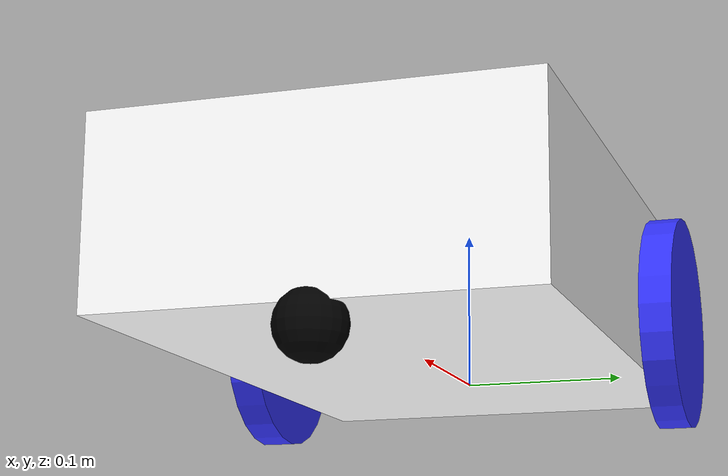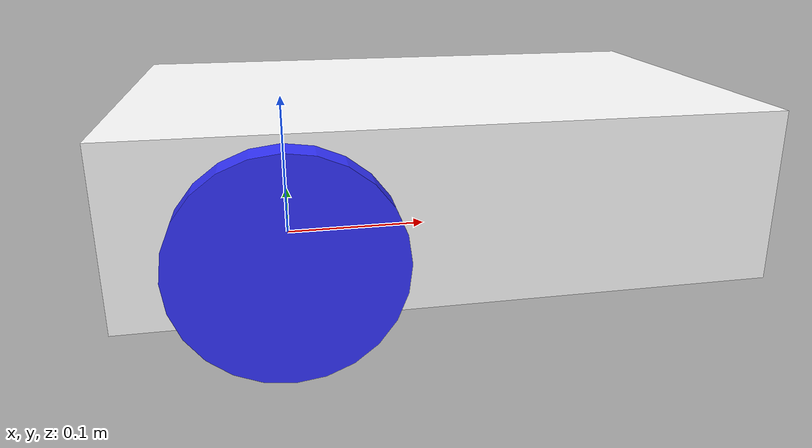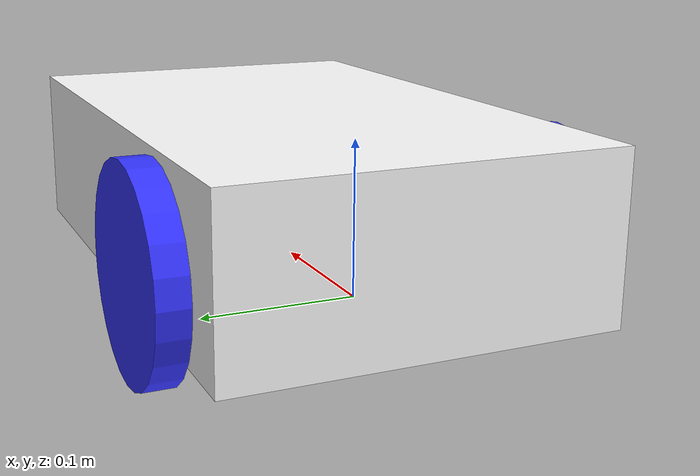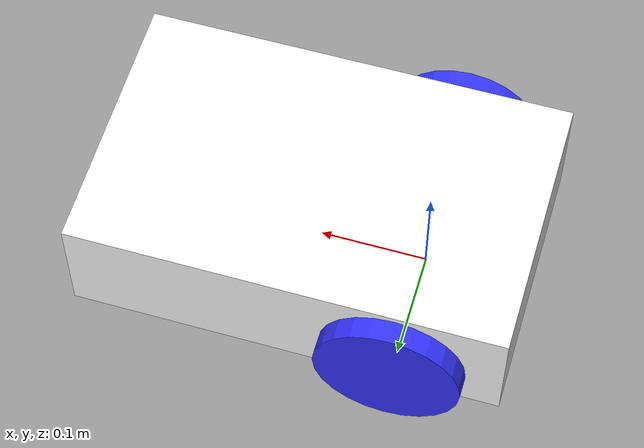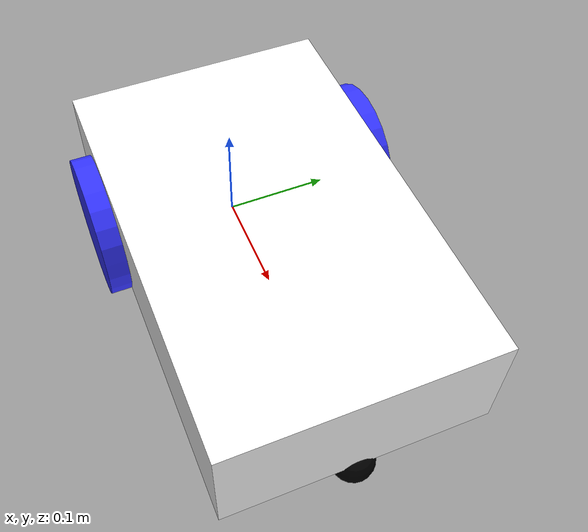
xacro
<?xml version="1.0"?>
<robot xmlns:xacro="http://www.ros.org/wiki/xacro">

    <xacro:include filename="inertial_macros.xacro"/>

    <material name="white">
        <color rgba="1 1 1 1" />
    </material>

    <material name="orange">
        <color rgba="1 0.3 0.1 1" />
    </material>

    <material name="blue">
        <color rgba="0.2 0.2 1 1" />
    </material>

    <material name="black">
        <color rgba="0 0 0 1" />
    </material>

    <material name="red">
        <color rgba="1 0 0 1" />
    </material>

    <!-- BASE LINK -->

    <link name="base_link">

    </link>

    <joint name="chassis_join" type="fixed">
        <parent link="base_link"/>
        <child link="chassis"/>
        <origin xyz= "-0.1 0 0"/>
    </joint>

    <!-- CHASSIS LINK -->

    <link name="chassis">
        <visual>
            <origin xyz="0.2 0 0.05"/>
            <geometry>
                <box size="0.4 0.25 0.11"/>
            </geometry>
            <material name="white"/>
        </visual>
        <collision>
            <origin xyz="0.2 0 0.05"/>
            <geometry>
                <box size="0.4 0.25 0.11"/>
            </geometry>
        </collision>
        <xacro:inertial_box mass="2" x="0.4" y="0.25" z="0.11">
            <origin xyz="0.2 0 0.05" rpy="0 0 0"/>
        </xacro:inertial_box>
    </link>

    <gazebo reference="chassis">
        <material>Gazebo/White</material>
    </gazebo>

    <!-- LEFT WHEEL LINK -->

    <joint name="left_wheel_joint" type="continuous">
        <parent link="base_link"/>
        <child link="left_wheel"/>
        <origin xyz="0 0.135 0.033" rpy="-${pi/2} 0 0"/>
        <axis xyz="0 0 1"/>
    </joint>

    <link name="left_wheel">
        <visual>
            <geometry>
                <cylinder radius="0.067" length="0.02"/>
            </geometry>
            <material name="blue"/>
        </visual>
        <collision>
            <geometry>
                <cylinder radius="0.067" length="0.02"/>
            </geometry>
        </collision>
        <xacro:inertial_cylinder mass="0.1" length="0.02" radius="0.067">
            <origin xyz="0 0 0" rpy="0 0 0"/>
        </xacro:inertial_cylinder>
    </link>

    <gazebo reference="left_wheel">
        <material>Gazebo/Blue</material>
    </gazebo>

    <!-- RIGHT WHEEL LINK -->

    <joint name="right_wheel_joint" type="continuous">
        <parent link="base_link"/>
        <child link="right_wheel"/>
        <origin xyz="0 -0.135 0.033" rpy="${pi/2} 0 0"/>
        <axis xyz="0 0 -1"/>
    </joint>

    <link name="right_wheel">
        <visual>
            <geometry>
                <cylinder radius="0.067" length="0.02"/>
            </geometry>
            <material name="blue"/>
        </visual>
        <collision>
            <geometry>
                <cylinder radius="0.067" length="0.02"/>
            </geometry>
        </collision>
        <xacro:inertial_cylinder mass="0.1" length="0.02" radius="0.067">
            <origin xyz="0 0 0" rpy="0 0 0"/>
        </xacro:inertial_cylinder>
    </link>

    <gazebo reference="right_wheel">
        <material>Gazebo/Blue</material>
    </gazebo>

    <!-- CASTOR WHEEL LINK-->
    <joint name="caster_wheel_joint" type="fixed">
        <parent link="chassis"/>
        <child link="caster_wheel"/>
        <origin xyz="0.390 0 -0.015"/>
    </joint>

    <link name="caster_wheel">
        <visual>
            <geometry>
                <sphere radius="0.02"/>
            </geometry>
            <material name='black'/>
        </visual>
        <collision>
            <geometry>
                <sphere radius="0.02"/>
            </geometry>
        </collision>
        <xacro:inertial_sphere mass="0.01" radius="0.02">
            <origin xyz="0 0 0" rpy="0 0 0"/>
        </xacro:inertial_sphere>
    </link>

    <gazebo reference="caster_wheel">
        <material>Gazebo/Black</material>
        <mu1 value="0.001"/>
        <mu2 value="0.001"/>
    </gazebo>

</robot>
